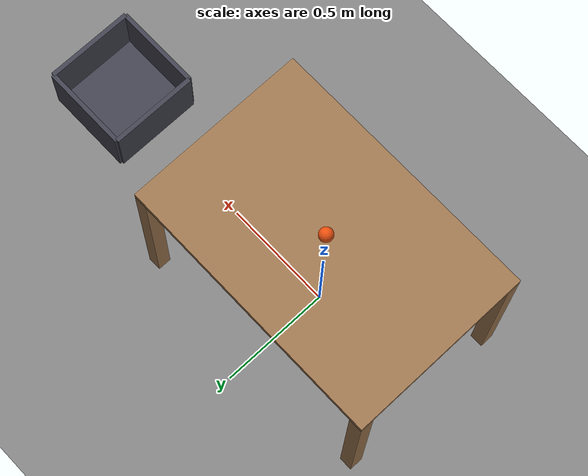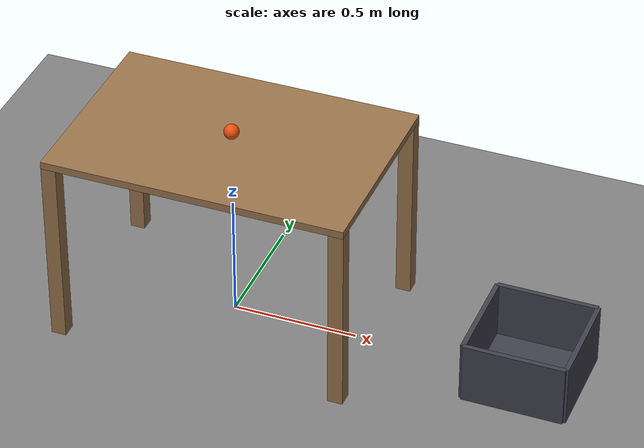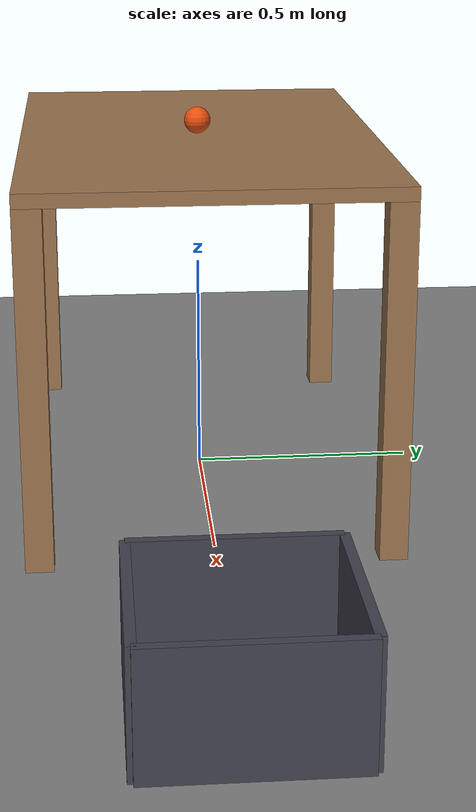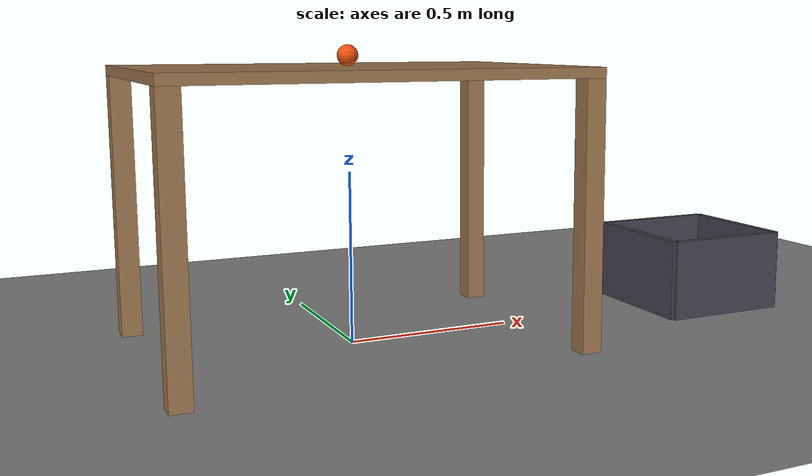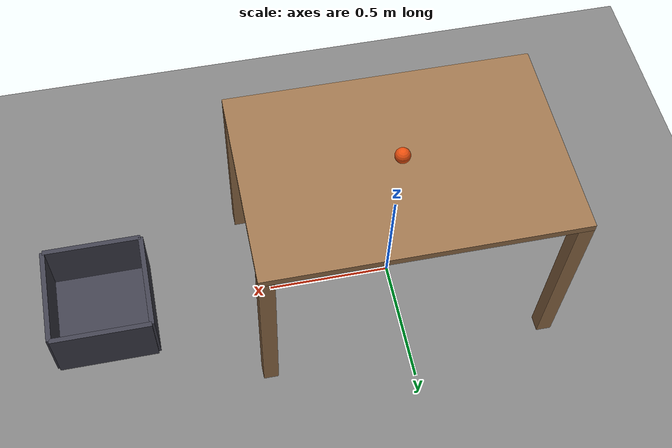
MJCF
<mujoco model="rolling_off_a_table_into_a_bucket">
  <compiler angle="radian"/>
  <option timestep="0.002"/>
  <worldbody>
    <geom name="floor" type="plane" size="6 6 0.1" friction="0.8 0.005 0.002"/>
    <body name="table">
      <geom name="table_top" type="box" pos="0 0 0.785" size="0.6 0.4 0.015" friction="0.8 0.001 0.0001" solref="0.01 1" rgba="0.6 0.45 0.3 1"/>
      <geom name="table_near_left_leg" type="box" pos="-0.57 0.37 0.385" size="0.03 0.03 0.385" friction="0.8 0.001 0.0001" solref="0.01 1" rgba="0.6 0.45 0.3 1"/>
      <geom name="table_near_right_leg" type="box" pos="-0.57 -0.37 0.385" size="0.03 0.03 0.385" friction="0.8 0.001 0.0001" solref="0.01 1" rgba="0.6 0.45 0.3 1"/>
      <geom name="table_far_left_leg" type="box" pos="0.57 0.37 0.385" size="0.03 0.03 0.385" friction="0.8 0.001 0.0001" solref="0.01 1" rgba="0.6 0.45 0.3 1"/>
      <geom name="table_far_right_leg" type="box" pos="0.57 -0.37 0.385" size="0.03 0.03 0.385" friction="0.8 0.001 0.0001" solref="0.01 1" rgba="0.6 0.45 0.3 1"/>
    </body>
    <body name="bucket">
      <geom name="bucket_base" type="box" pos="1.2 0 0.01" size="0.2 0.2 0.01" friction="0.8 0.01 0.01" solref="0.01 1" rgba="0.25 0.25 0.3 1"/>
      <geom name="bucket_near_wall" type="box" pos="1 0 0.125" size="0.01 0.2 0.125" friction="0.8 0.01 0.01" solref="0.01 1" rgba="0.25 0.25 0.3 1"/>
      <geom name="bucket_far_wall" type="box" pos="1.4 0 0.125" size="0.01 0.2 0.125" friction="0.8 0.01 0.01" solref="0.01 1" rgba="0.25 0.25 0.3 1"/>
      <geom name="bucket_left_wall" type="box" pos="1.2 0.2 0.125" size="0.2 0.01 0.125" friction="0.8 0.01 0.01" solref="0.01 1" rgba="0.25 0.25 0.3 1"/>
      <geom name="bucket_right_wall" type="box" pos="1.2 -0.2 0.125" size="0.2 0.01 0.125" friction="0.8 0.01 0.01" solref="0.01 1" rgba="0.25 0.25 0.3 1"/>
    </body>
    <body name="ball" pos="0 0 0.83">
      <freejoint/>
      <geom name="ball" type="sphere" pos="0 0 0" size="0.03" mass="0.1" condim="6" friction="0.8 0.001 0.0001" solref="0.01 1" rgba="0.9 0.3 0.05 1"/>
    </body>
  </worldbody>
  <keyframe>
    <key name="start" qpos="0 0 0.83 1 0 0 0" qvel="1.5 0 0 0 50 0"/>
  </keyframe>
</mujoco>
